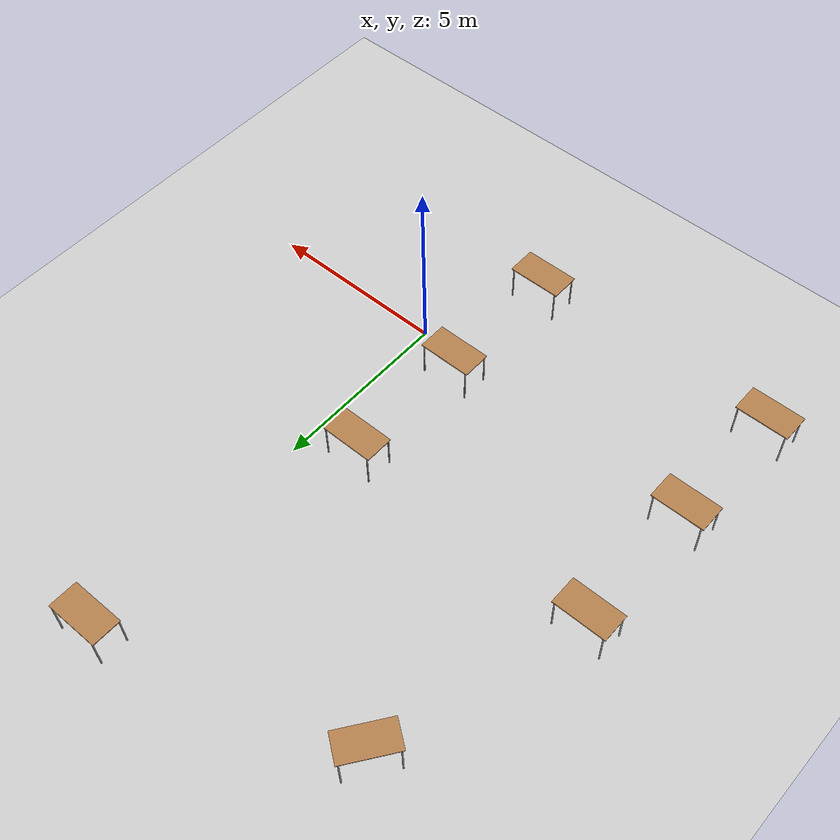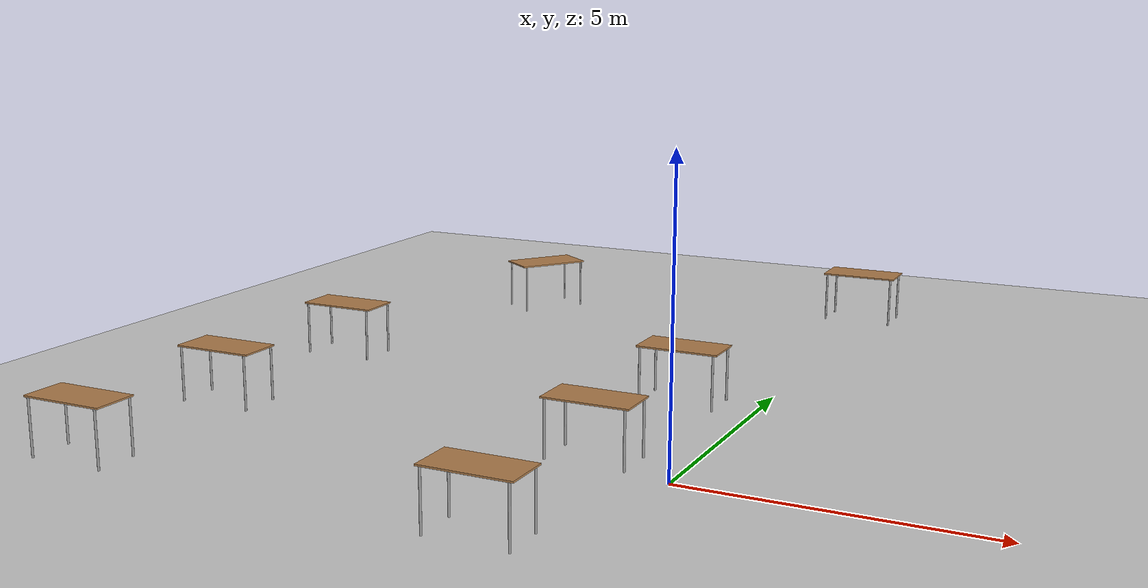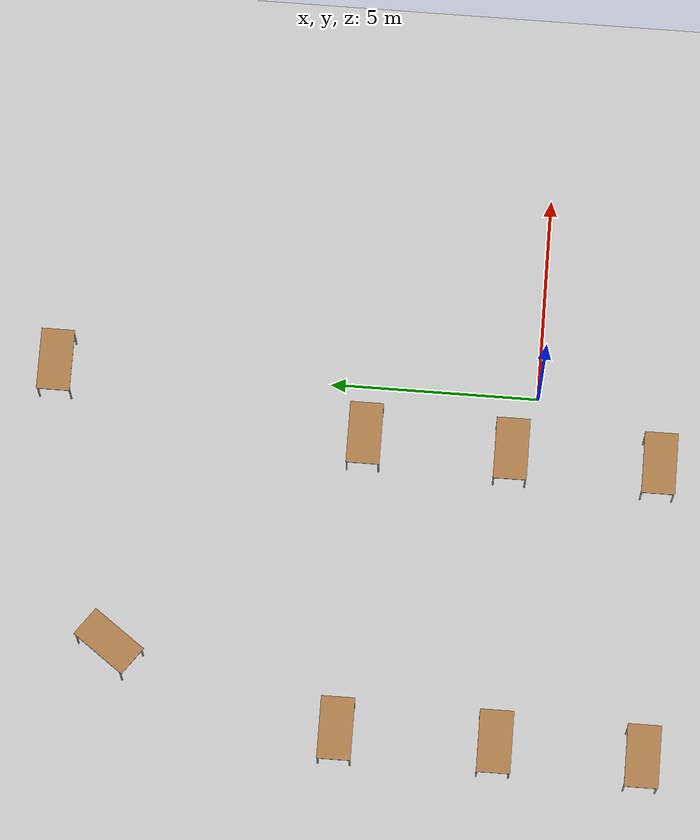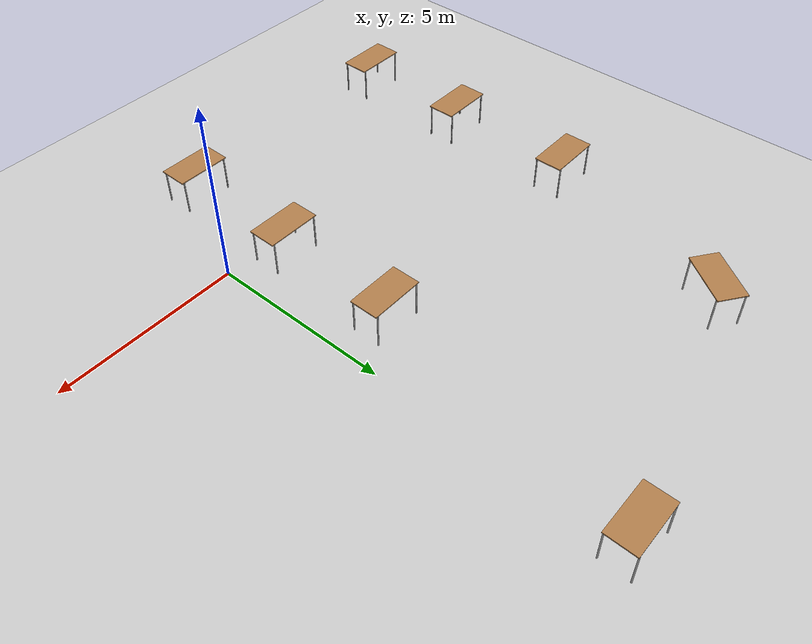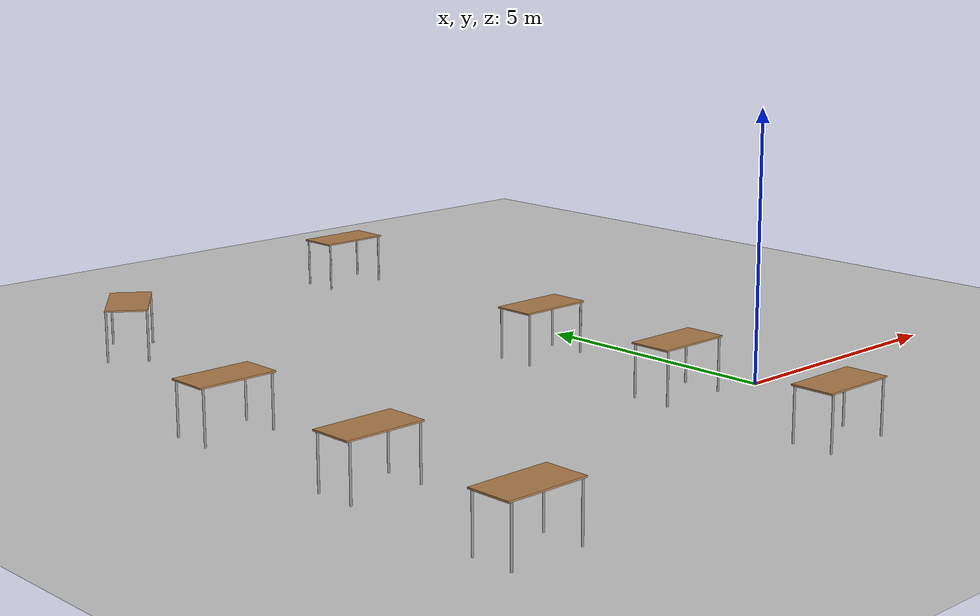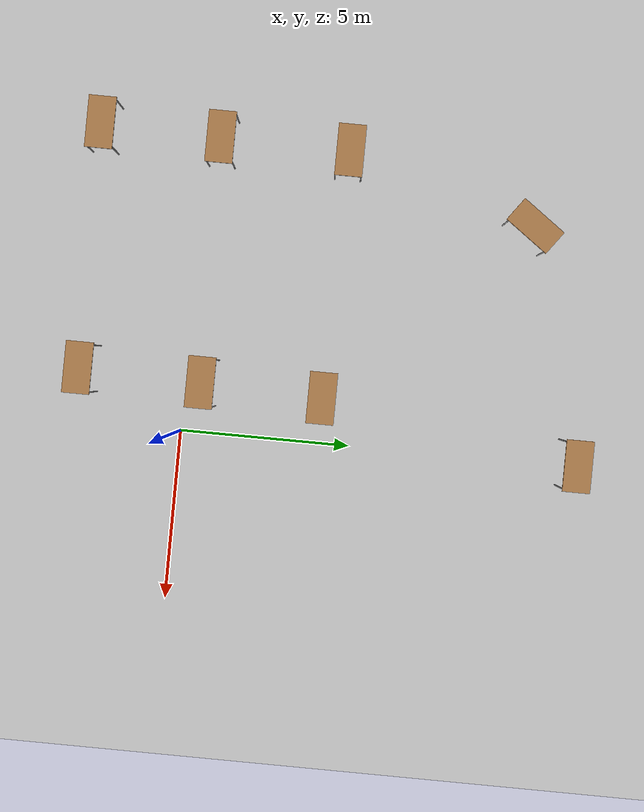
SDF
<sdf version="1.6">
 <world name="default">
  <model name="ground_plane">
   <static>1</static>
   <link name="link">
    <collision name="collision">
     <geometry><plane><normal>0 0 1</normal><size>100 100</size></plane></geometry>
     <surface><friction><ode><mu>500</mu><mu2>10</mu2></ode></friction></surface>
     <max_contacts>20</max_contacts>
    </collision>
    <visual name="visual">
     <cast_shadows>0</cast_shadows>
     <geometry><plane><normal>0 0 1</normal><size>100 100</size></plane></geometry>
     <material>
      <script><uri>file://media/materials/scripts/gazebo.material</uri><name>Gazebo/Grey</name></script>
     </material>
    </visual>
   </link>
  </model>
  <model name="table_5">
   <static>1</static>
   <link name="link">
    <collision name="surface">
     <pose>0 0 1 0 -0 0</pose>
     <geometry><box><size>1.5 0.8 0.03</size></box></geometry>
     <surface><friction><ode><mu>0.6</mu><mu2>0.6</mu2></ode></friction></surface>
    </collision>
    <visual name="visual1">
     <pose>0 0 1 0 -0 0</pose>
     <geometry><box><size>1.5 0.8 0.03</size></box></geometry>
     <material>
      <script><uri>file://media/materials/scripts/gazebo.material</uri><name>Gazebo/Wood</name></script>
     </material>
    </visual>
    <collision name="front_left_leg">
     <pose>0.68 0.38 0.5 0 -0 0</pose>
     <geometry><cylinder><radius>0.02</radius><length>1</length></cylinder></geometry>
    </collision>
    <visual name="front_left_leg">
     <pose>0.68 0.38 0.5 0 -0 0</pose>
     <geometry><cylinder><radius>0.02</radius><length>1</length></cylinder></geometry>
     <material>
      <script><uri>file://media/materials/scripts/gazebo.material</uri><name>Gazebo/Grey</name></script>
     </material>
    </visual>
    <collision name="front_right_leg">
     <pose>0.68 -0.38 0.5 0 -0 0</pose>
     <geometry><cylinder><radius>0.02</radius><length>1</length></cylinder></geometry>
    </collision>
    <visual name="front_right_leg">
     <pose>0.68 -0.38 0.5 0 -0 0</pose>
     <geometry><cylinder><radius>0.02</radius><length>1</length></cylinder></geometry>
     <material>
      <script><uri>file://media/materials/scripts/gazebo.material</uri><name>Gazebo/Grey</name></script>
     </material>
    </visual>
    <collision name="back_right_leg">
     <pose>-0.68 -0.38 0.5 0 -0 0</pose>
     <geometry><cylinder><radius>0.02</radius><length>1</length></cylinder></geometry>
    </collision>
    <visual name="back_right_leg">
     <pose>-0.68 -0.38 0.5 0 -0 0</pose>
     <geometry><cylinder><radius>0.02</radius><length>1</length></cylinder></geometry>
     <material>
      <script><uri>file://media/materials/scripts/gazebo.material</uri><name>Gazebo/Grey</name></script>
     </material>
    </visual>
    <collision name="back_left_leg">
     <pose>-0.68 0.38 0.5 0 -0 0</pose>
     <geometry><cylinder><radius>0.02</radius><length>1</length></cylinder></geometry>
    </collision>
    <visual name="back_left_leg">
     <pose>-0.68 0.38 0.5 0 -0 0</pose>
     <geometry><cylinder><radius>0.02</radius><length>1</length></cylinder></geometry>
     <material>
      <script><uri>file://media/materials/scripts/gazebo.material</uri><name>Gazebo/Grey</name></script>
     </material>
    </visual>
   </link>
   <pose>-0.125753 11.5989 0 0 -0 0</pose>
  </model>
  <model name="table_6">
   <static>1</static>
   <link name="link">
    <collision name="surface">
     <pose>0 0 1 0 -0 0</pose>
     <geometry><box><size>1.5 0.8 0.03</size></box></geometry>
     <surface><friction><ode><mu>0.6</mu><mu2>0.6</mu2></ode></friction></surface>
    </collision>
    <visual name="visual1">
     <pose>0 0 1 0 -0 0</pose>
     <geometry><box><size>1.5 0.8 0.03</size></box></geometry>
     <material>
      <script><uri>file://media/materials/scripts/gazebo.material</uri><name>Gazebo/Wood</name></script>
     </material>
    </visual>
    <collision name="front_left_leg">
     <pose>0.68 0.38 0.5 0 -0 0</pose>
     <geometry><cylinder><radius>0.02</radius><length>1</length></cylinder></geometry>
    </collision>
    <visual name="front_left_leg">
     <pose>0.68 0.38 0.5 0 -0 0</pose>
     <geometry><cylinder><radius>0.02</radius><length>1</length></cylinder></geometry>
     <material>
      <script><uri>file://media/materials/scripts/gazebo.material</uri><name>Gazebo/Grey</name></script>
     </material>
    </visual>
    <collision name="front_right_leg">
     <pose>0.68 -0.38 0.5 0 -0 0</pose>
     <geometry><cylinder><radius>0.02</radius><length>1</length></cylinder></geometry>
    </collision>
    <visual name="front_right_leg">
     <pose>0.68 -0.38 0.5 0 -0 0</pose>
     <geometry><cylinder><radius>0.02</radius><length>1</length></cylinder></geometry>
     <material>
      <script><uri>file://media/materials/scripts/gazebo.material</uri><name>Gazebo/Grey</name></script>
     </material>
    </visual>
    <collision name="back_right_leg">
     <pose>-0.68 -0.38 0.5 0 -0 0</pose>
     <geometry><cylinder><radius>0.02</radius><length>1</length></cylinder></geometry>
    </collision>
    <visual name="back_right_leg">
     <pose>-0.68 -0.38 0.5 0 -0 0</pose>
     <geometry><cylinder><radius>0.02</radius><length>1</length></cylinder></geometry>
     <material>
      <script><uri>file://media/materials/scripts/gazebo.material</uri><name>Gazebo/Grey</name></script>
     </material>
    </visual>
    <collision name="back_left_leg">
     <pose>-0.68 0.38 0.5 0 -0 0</pose>
     <geometry><cylinder><radius>0.02</radius><length>1</length></cylinder></geometry>
    </collision>
    <visual name="back_left_leg">
     <pose>-0.68 0.38 0.5 0 -0 0</pose>
     <geometry><cylinder><radius>0.02</radius><length>1</length></cylinder></geometry>
     <material>
      <script><uri>file://media/materials/scripts/gazebo.material</uri><name>Gazebo/Grey</name></script>
     </material>
    </visual>
   </link>
   <pose>-6.88104 9.71686 0 0 -0 0.94193</pose>
  </model>
  <model name="table_7">
   <static>1</static>
   <link name="link">
    <collision name="surface">
     <pose>0 0 1 0 -0 0</pose>
     <geometry><box><size>1.5 0.8 0.03</size></box></geometry>
     <surface><friction><ode><mu>0.6</mu><mu2>0.6</mu2></ode></friction></surface>
    </collision>
    <visual name="visual1">
     <pose>0 0 1 0 -0 0</pose>
     <geometry><box><size>1.5 0.8 0.03</size></box></geometry>
     <material>
      <script><uri>file://media/materials/scripts/gazebo.material</uri><name>Gazebo/Wood</name></script>
     </material>
    </visual>
    <collision name="front_left_leg">
     <pose>0.68 0.38 0.5 0 -0 0</pose>
     <geometry><cylinder><radius>0.02</radius><length>1</length></cylinder></geometry>
    </collision>
    <visual name="front_left_leg">
     <pose>0.68 0.38 0.5 0 -0 0</pose>
     <geometry><cylinder><radius>0.02</radius><length>1</length></cylinder></geometry>
     <material>
      <script><uri>file://media/materials/scripts/gazebo.material</uri><name>Gazebo/Grey</name></script>
     </material>
    </visual>
    <collision name="front_right_leg">
     <pose>0.68 -0.38 0.5 0 -0 0</pose>
     <geometry><cylinder><radius>0.02</radius><length>1</length></cylinder></geometry>
    </collision>
    <visual name="front_right_leg">
     <pose>0.68 -0.38 0.5 0 -0 0</pose>
     <geometry><cylinder><radius>0.02</radius><length>1</length></cylinder></geometry>
     <material>
      <script><uri>file://media/materials/scripts/gazebo.material</uri><name>Gazebo/Grey</name></script>
     </material>
    </visual>
    <collision name="back_right_leg">
     <pose>-0.68 -0.38 0.5 0 -0 0</pose>
     <geometry><cylinder><radius>0.02</radius><length>1</length></cylinder></geometry>
    </collision>
    <visual name="back_right_leg">
     <pose>-0.68 -0.38 0.5 0 -0 0</pose>
     <geometry><cylinder><radius>0.02</radius><length>1</length></cylinder></geometry>
     <material>
      <script><uri>file://media/materials/scripts/gazebo.material</uri><name>Gazebo/Grey</name></script>
     </material>
    </visual>
    <collision name="back_left_leg">
     <pose>-0.68 0.38 0.5 0 -0 0</pose>
     <geometry><cylinder><radius>0.02</radius><length>1</length></cylinder></geometry>
    </collision>
    <visual name="back_left_leg">
     <pose>-0.68 0.38 0.5 0 -0 0</pose>
     <geometry><cylinder><radius>0.02</radius><length>1</length></cylinder></geometry>
     <material>
      <script><uri>file://media/materials/scripts/gazebo.material</uri><name>Gazebo/Grey</name></script>
     </material>
    </visual>
   </link>
   <pose>-8.54454 4.22579 0 0 -0 0</pose>
  </model>
  <model name="table_8">
   <static>1</static>
   <link name="link">
    <collision name="surface">
     <pose>0 0 1 0 -0 0</pose>
     <geometry><box><size>1.5 0.8 0.03</size></box></geometry>
     <surface><friction><ode><mu>0.6</mu><mu2>0.6</mu2></ode></friction></surface>
    </collision>
    <visual name="visual1">
     <pose>0 0 1 0 -0 0</pose>
     <geometry><box><size>1.5 0.8 0.03</size></box></geometry>
     <material>
      <script><uri>file://media/materials/scripts/gazebo.material</uri><name>Gazebo/Wood</name></script>
     </material>
    </visual>
    <collision name="front_left_leg">
     <pose>0.68 0.38 0.5 0 -0 0</pose>
     <geometry><cylinder><radius>0.02</radius><length>1</length></cylinder></geometry>
    </collision>
    <visual name="front_left_leg">
     <pose>0.68 0.38 0.5 0 -0 0</pose>
     <geometry><cylinder><radius>0.02</radius><length>1</length></cylinder></geometry>
     <material>
      <script><uri>file://media/materials/scripts/gazebo.material</uri><name>Gazebo/Grey</name></script>
     </material>
    </visual>
    <collision name="front_right_leg">
     <pose>0.68 -0.38 0.5 0 -0 0</pose>
     <geometry><cylinder><radius>0.02</radius><length>1</length></cylinder></geometry>
    </collision>
    <visual name="front_right_leg">
     <pose>0.68 -0.38 0.5 0 -0 0</pose>
     <geometry><cylinder><radius>0.02</radius><length>1</length></cylinder></geometry>
     <material>
      <script><uri>file://media/materials/scripts/gazebo.material</uri><name>Gazebo/Grey</name></script>
     </material>
    </visual>
    <collision name="back_right_leg">
     <pose>-0.68 -0.38 0.5 0 -0 0</pose>
     <geometry><cylinder><radius>0.02</radius><length>1</length></cylinder></geometry>
    </collision>
    <visual name="back_right_leg">
     <pose>-0.68 -0.38 0.5 0 -0 0</pose>
     <geometry><cylinder><radius>0.02</radius><length>1</length></cylinder></geometry>
     <material>
      <script><uri>file://media/materials/scripts/gazebo.material</uri><name>Gazebo/Grey</name></script>
     </material>
    </visual>
    <collision name="back_left_leg">
     <pose>-0.68 0.38 0.5 0 -0 0</pose>
     <geometry><cylinder><radius>0.02</radius><length>1</length></cylinder></geometry>
    </collision>
    <visual name="back_left_leg">
     <pose>-0.68 0.38 0.5 0 -0 0</pose>
     <geometry><cylinder><radius>0.02</radius><length>1</length></cylinder></geometry>
     <material>
      <script><uri>file://media/materials/scripts/gazebo.material</uri><name>Gazebo/Grey</name></script>
     </material>
    </visual>
   </link>
   <pose>-8.57751 0.480002 0 0 -0 0</pose>
  </model>
  <model name="table_9">
   <static>1</static>
   <link name="link">
    <collision name="surface">
     <pose>0 0 1 0 -0 0</pose>
     <geometry><box><size>1.5 0.8 0.03</size></box></geometry>
     <surface><friction><ode><mu>0.6</mu><mu2>0.6</mu2></ode></friction></surface>
    </collision>
    <visual name="visual1">
     <pose>0 0 1 0 -0 0</pose>
     <geometry><box><size>1.5 0.8 0.03</size></box></geometry>
     <material>
      <script><uri>file://media/materials/scripts/gazebo.material</uri><name>Gazebo/Wood</name></script>
     </material>
    </visual>
    <collision name="front_left_leg">
     <pose>0.68 0.38 0.5 0 -0 0</pose>
     <geometry><cylinder><radius>0.02</radius><length>1</length></cylinder></geometry>
    </collision>
    <visual name="front_left_leg">
     <pose>0.68 0.38 0.5 0 -0 0</pose>
     <geometry><cylinder><radius>0.02</radius><length>1</length></cylinder></geometry>
     <material>
      <script><uri>file://media/materials/scripts/gazebo.material</uri><name>Gazebo/Grey</name></script>
     </material>
    </visual>
    <collision name="front_right_leg">
     <pose>0.68 -0.38 0.5 0 -0 0</pose>
     <geometry><cylinder><radius>0.02</radius><length>1</length></cylinder></geometry>
    </collision>
    <visual name="front_right_leg">
     <pose>0.68 -0.38 0.5 0 -0 0</pose>
     <geometry><cylinder><radius>0.02</radius><length>1</length></cylinder></geometry>
     <material>
      <script><uri>file://media/materials/scripts/gazebo.material</uri><name>Gazebo/Grey</name></script>
     </material>
    </visual>
    <collision name="back_right_leg">
     <pose>-0.68 -0.38 0.5 0 -0 0</pose>
     <geometry><cylinder><radius>0.02</radius><length>1</length></cylinder></geometry>
    </collision>
    <visual name="back_right_leg">
     <pose>-0.68 -0.38 0.5 0 -0 0</pose>
     <geometry><cylinder><radius>0.02</radius><length>1</length></cylinder></geometry>
     <material>
      <script><uri>file://media/materials/scripts/gazebo.material</uri><name>Gazebo/Grey</name></script>
     </material>
    </visual>
    <collision name="back_left_leg">
     <pose>-0.68 0.38 0.5 0 -0 0</pose>
     <geometry><cylinder><radius>0.02</radius><length>1</length></cylinder></geometry>
    </collision>
    <visual name="back_left_leg">
     <pose>-0.68 0.38 0.5 0 -0 0</pose>
     <geometry><cylinder><radius>0.02</radius><length>1</length></cylinder></geometry>
     <material>
      <script><uri>file://media/materials/scripts/gazebo.material</uri><name>Gazebo/Grey</name></script>
     </material>
    </visual>
   </link>
   <pose>-8.66548 -2.99358 0 0 -0 0</pose>
  </model>
  <model name="table_10">
   <static>1</static>
   <link name="link">
    <collision name="surface">
     <pose>0 0 1 0 -0 0</pose>
     <geometry><box><size>1.5 0.8 0.03</size></box></geometry>
     <surface><friction><ode><mu>0.6</mu><mu2>0.6</mu2></ode></friction></surface>
    </collision>
    <visual name="visual1">
     <pose>0 0 1 0 -0 0</pose>
     <geometry><box><size>1.5 0.8 0.03</size></box></geometry>
     <material>
      <script><uri>file://media/materials/scripts/gazebo.material</uri><name>Gazebo/Wood</name></script>
     </material>
    </visual>
    <collision name="front_left_leg">
     <pose>0.68 0.38 0.5 0 -0 0</pose>
     <geometry><cylinder><radius>0.02</radius><length>1</length></cylinder></geometry>
    </collision>
    <visual name="front_left_leg">
     <pose>0.68 0.38 0.5 0 -0 0</pose>
     <geometry><cylinder><radius>0.02</radius><length>1</length></cylinder></geometry>
     <material>
      <script><uri>file://media/materials/scripts/gazebo.material</uri><name>Gazebo/Grey</name></script>
     </material>
    </visual>
    <collision name="front_right_leg">
     <pose>0.68 -0.38 0.5 0 -0 0</pose>
     <geometry><cylinder><radius>0.02</radius><length>1</length></cylinder></geometry>
    </collision>
    <visual name="front_right_leg">
     <pose>0.68 -0.38 0.5 0 -0 0</pose>
     <geometry><cylinder><radius>0.02</radius><length>1</length></cylinder></geometry>
     <material>
      <script><uri>file://media/materials/scripts/gazebo.material</uri><name>Gazebo/Grey</name></script>
     </material>
    </visual>
    <collision name="back_right_leg">
     <pose>-0.68 -0.38 0.5 0 -0 0</pose>
     <geometry><cylinder><radius>0.02</radius><length>1</length></cylinder></geometry>
    </collision>
    <visual name="back_right_leg">
     <pose>-0.68 -0.38 0.5 0 -0 0</pose>
     <geometry><cylinder><radius>0.02</radius><length>1</length></cylinder></geometry>
     <material>
      <script><uri>file://media/materials/scripts/gazebo.material</uri><name>Gazebo/Grey</name></script>
     </material>
    </visual>
    <collision name="back_left_leg">
     <pose>-0.68 0.38 0.5 0 -0 0</pose>
     <geometry><cylinder><radius>0.02</radius><length>1</length></cylinder></geometry>
    </collision>
    <visual name="back_left_leg">
     <pose>-0.68 0.38 0.5 0 -0 0</pose>
     <geometry><cylinder><radius>0.02</radius><length>1</length></cylinder></geometry>
     <material>
      <script><uri>file://media/materials/scripts/gazebo.material</uri><name>Gazebo/Grey</name></script>
     </material>
    </visual>
   </link>
   <pose>-1.3745 4.08444 0 0 -0 0</pose>
  </model>
  <model name="table_11">
   <static>1</static>
   <link name="link">
    <collision name="surface">
     <pose>0 0 1 0 -0 0</pose>
     <geometry><box><size>1.5 0.8 0.03</size></box></geometry>
     <surface><friction><ode><mu>0.6</mu><mu2>0.6</mu2></ode></friction></surface>
    </collision>
    <visual name="visual1">
     <pose>0 0 1 0 -0 0</pose>
     <geometry><box><size>1.5 0.8 0.03</size></box></geometry>
     <material>
      <script><uri>file://media/materials/scripts/gazebo.material</uri><name>Gazebo/Wood</name></script>
     </material>
    </visual>
    <collision name="front_left_leg">
     <pose>0.68 0.38 0.5 0 -0 0</pose>
     <geometry><cylinder><radius>0.02</radius><length>1</length></cylinder></geometry>
    </collision>
    <visual name="front_left_leg">
     <pose>0.68 0.38 0.5 0 -0 0</pose>
     <geometry><cylinder><radius>0.02</radius><length>1</length></cylinder></geometry>
     <material>
      <script><uri>file://media/materials/scripts/gazebo.material</uri><name>Gazebo/Grey</name></script>
     </material>
    </visual>
    <collision name="front_right_leg">
     <pose>0.68 -0.38 0.5 0 -0 0</pose>
     <geometry><cylinder><radius>0.02</radius><length>1</length></cylinder></geometry>
    </collision>
    <visual name="front_right_leg">
     <pose>0.68 -0.38 0.5 0 -0 0</pose>
     <geometry><cylinder><radius>0.02</radius><length>1</length></cylinder></geometry>
     <material>
      <script><uri>file://media/materials/scripts/gazebo.material</uri><name>Gazebo/Grey</name></script>
     </material>
    </visual>
    <collision name="back_right_leg">
     <pose>-0.68 -0.38 0.5 0 -0 0</pose>
     <geometry><cylinder><radius>0.02</radius><length>1</length></cylinder></geometry>
    </collision>
    <visual name="back_right_leg">
     <pose>-0.68 -0.38 0.5 0 -0 0</pose>
     <geometry><cylinder><radius>0.02</radius><length>1</length></cylinder></geometry>
     <material>
      <script><uri>file://media/materials/scripts/gazebo.material</uri><name>Gazebo/Grey</name></script>
     </material>
    </visual>
    <collision name="back_left_leg">
     <pose>-0.68 0.38 0.5 0 -0 0</pose>
     <geometry><cylinder><radius>0.02</radius><length>1</length></cylinder></geometry>
    </collision>
    <visual name="back_left_leg">
     <pose>-0.68 0.38 0.5 0 -0 0</pose>
     <geometry><cylinder><radius>0.02</radius><length>1</length></cylinder></geometry>
     <material>
      <script><uri>file://media/materials/scripts/gazebo.material</uri><name>Gazebo/Grey</name></script>
     </material>
    </visual>
   </link>
   <pose>-1.49306 0.567274 0 0 -0 0</pose>
  </model>
  <model name="table_12">
   <static>1</static>
   <link name="link">
    <collision name="surface">
     <pose>0 0 1 0 -0 0</pose>
     <geometry><box><size>1.5 0.8 0.03</size></box></geometry>
     <surface><friction><ode><mu>0.6</mu><mu2>0.6</mu2></ode></friction></surface>
    </collision>
    <visual name="visual1">
     <pose>0 0 1 0 -0 0</pose>
     <geometry><box><size>1.5 0.8 0.03</size></box></geometry>
     <material>
      <script><uri>file://media/materials/scripts/gazebo.material</uri><name>Gazebo/Wood</name></script>
     </material>
    </visual>
    <collision name="front_left_leg">
     <pose>0.68 0.38 0.5 0 -0 0</pose>
     <geometry><cylinder><radius>0.02</radius><length>1</length></cylinder></geometry>
    </collision>
    <visual name="front_left_leg">
     <pose>0.68 0.38 0.5 0 -0 0</pose>
     <geometry><cylinder><radius>0.02</radius><length>1</length></cylinder></geometry>
     <material>
      <script><uri>file://media/materials/scripts/gazebo.material</uri><name>Gazebo/Grey</name></script>
     </material>
    </visual>
    <collision name="front_right_leg">
     <pose>0.68 -0.38 0.5 0 -0 0</pose>
     <geometry><cylinder><radius>0.02</radius><length>1</length></cylinder></geometry>
    </collision>
    <visual name="front_right_leg">
     <pose>0.68 -0.38 0.5 0 -0 0</pose>
     <geometry><cylinder><radius>0.02</radius><length>1</length></cylinder></geometry>
     <material>
      <script><uri>file://media/materials/scripts/gazebo.material</uri><name>Gazebo/Grey</name></script>
     </material>
    </visual>
    <collision name="back_right_leg">
     <pose>-0.68 -0.38 0.5 0 -0 0</pose>
     <geometry><cylinder><radius>0.02</radius><length>1</length></cylinder></geometry>
    </collision>
    <visual name="back_right_leg">
     <pose>-0.68 -0.38 0.5 0 -0 0</pose>
     <geometry><cylinder><radius>0.02</radius><length>1</length></cylinder></geometry>
     <material>
      <script><uri>file://media/materials/scripts/gazebo.material</uri><name>Gazebo/Grey</name></script>
     </material>
    </visual>
    <collision name="back_left_leg">
     <pose>-0.68 0.38 0.5 0 -0 0</pose>
     <geometry><cylinder><radius>0.02</radius><length>1</length></cylinder></geometry>
    </collision>
    <visual name="back_left_leg">
     <pose>-0.68 0.38 0.5 0 -0 0</pose>
     <geometry><cylinder><radius>0.02</radius><length>1</length></cylinder></geometry>
     <material>
      <script><uri>file://media/materials/scripts/gazebo.material</uri><name>Gazebo/Grey</name></script>
     </material>
    </visual>
   </link>
   <pose>-1.58625 -2.97362 0 0 -0 0</pose>
  </model>
 </world>
</sdf>
